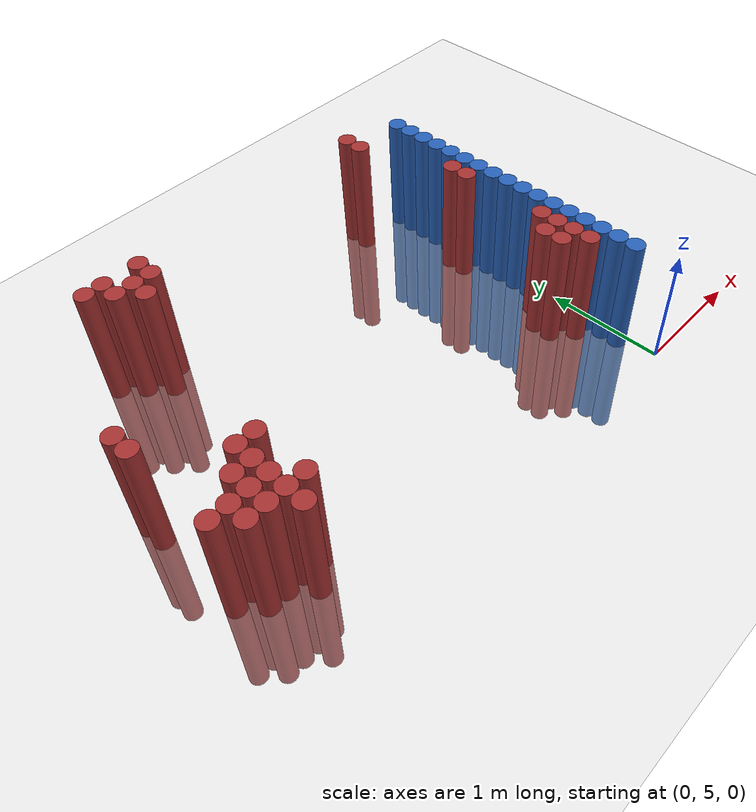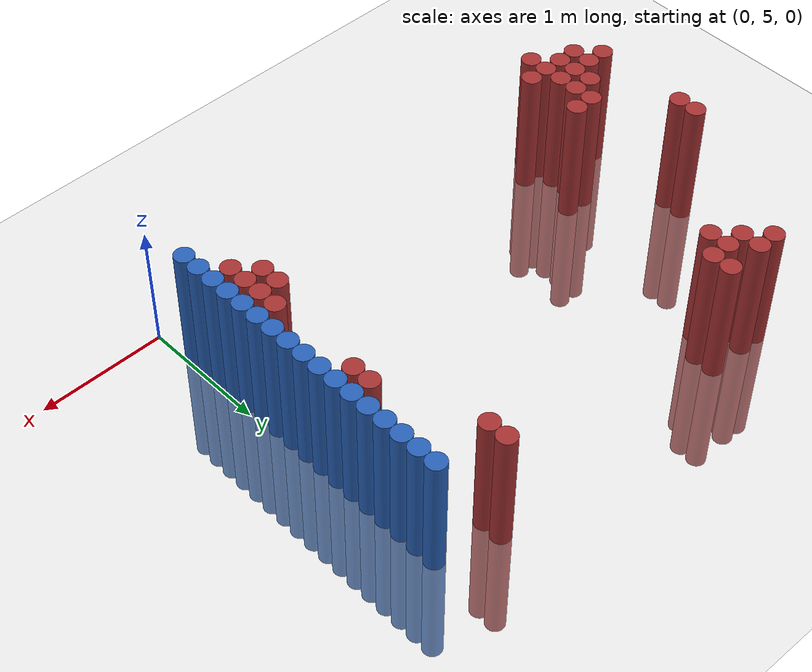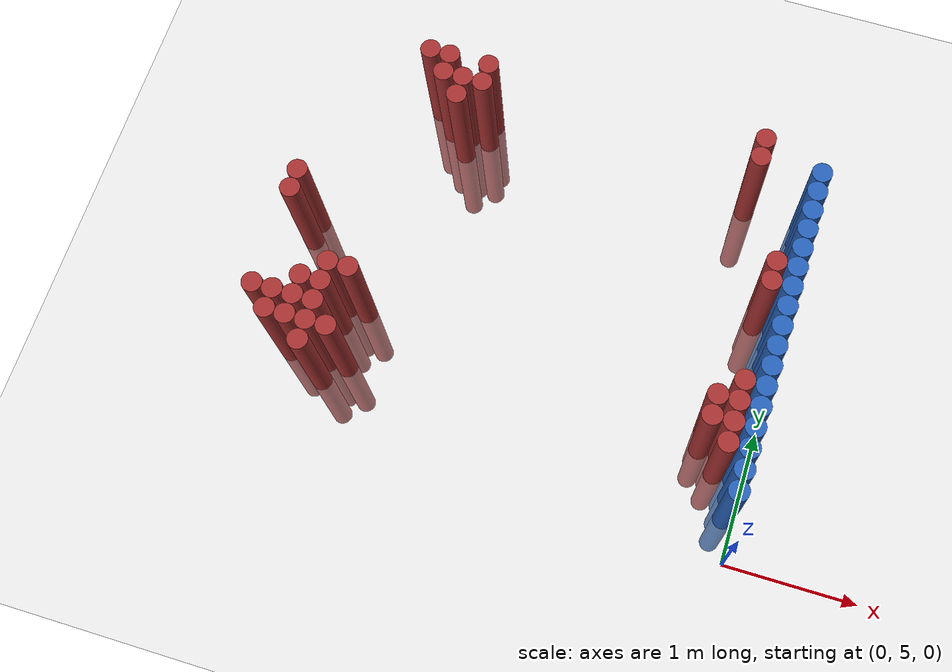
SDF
<sdf version="1.6">
 <world name="default">
  <model name="ground_plane">
   <static>1</static>
   <link name="link">
    <collision name="collision">
     <geometry><plane><normal>0 0 1</normal><size>100 100</size></plane></geometry>
     <surface><friction><ode><mu>100</mu><mu2>50</mu2></ode></friction></surface>
    </collision>
    <visual name="visual">
     <cast_shadows>0</cast_shadows>
     <geometry><plane><normal>0 0 1</normal><size>100 100</size></plane></geometry>
     <material>
      <script><uri>file://media/materials/scripts/gazebo.material</uri><name>Gazebo/Grey</name></script>
     </material>
    </visual>
   </link>
  </model>
  <model name="unit_cylinder_149">
   <static>1</static>
   <pose>-3.675000 5.775000 0.000000 0.000000 0.000000 0.000000</pose>
   <link name="link">
    <inertial>
     <mass>1</mass>
     <inertia><ixx>0.145833</ixx><ixy>0</ixy><ixz>0</ixz><iyy>0.145833</iyy><iyz>0</iyz><izz>0.125</izz></inertia>
    </inertial>
    <collision name="collision">
     <geometry><cylinder><radius>0.075000</radius><length>2</length></cylinder></geometry>
    </collision>
    <visual name="visual">
     <geometry><cylinder><radius>0.075000</radius><length>2</length></cylinder></geometry>
     <material>
      <ambient>0.648000 0.192000 0.192000 1</ambient>
      <diffuse>0.648000 0.192000 0.192000 1</diffuse>
     </material>
     <material>
      <script><name>Gazebo/Grey</name><uri>file://media/materials/scripts/gazebo.material</uri></script>
     </material>
    </visual>
   </link>
  </model>
  <model name="unit_cylinder_150">
   <static>1</static>
   <pose>-3.675000 6.525000 0.000000 0.000000 0.000000 0.000000</pose>
   <link name="link">
    <inertial>
     <mass>1</mass>
     <inertia><ixx>0.145833</ixx><ixy>0</ixy><ixz>0</ixz><iyy>0.145833</iyy><iyz>0</iyz><izz>0.125</izz></inertia>
    </inertial>
    <collision name="collision">
     <geometry><cylinder><radius>0.075000</radius><length>2</length></cylinder></geometry>
    </collision>
    <visual name="visual">
     <geometry><cylinder><radius>0.075000</radius><length>2</length></cylinder></geometry>
     <material>
      <ambient>0.648000 0.192000 0.192000 1</ambient>
      <diffuse>0.648000 0.192000 0.192000 1</diffuse>
     </material>
     <material>
      <script><name>Gazebo/Grey</name><uri>file://media/materials/scripts/gazebo.material</uri></script>
     </material>
    </visual>
   </link>
  </model>
  <model name="unit_cylinder_151">
   <static>1</static>
   <pose>-3.675000 6.675000 0.000000 0.000000 0.000000 0.000000</pose>
   <link name="link">
    <inertial>
     <mass>1</mass>
     <inertia><ixx>0.145833</ixx><ixy>0</ixy><ixz>0</ixz><iyy>0.145833</iyy><iyz>0</iyz><izz>0.125</izz></inertia>
    </inertial>
    <collision name="collision">
     <geometry><cylinder><radius>0.075000</radius><length>2</length></cylinder></geometry>
    </collision>
    <visual name="visual">
     <geometry><cylinder><radius>0.075000</radius><length>2</length></cylinder></geometry>
     <material>
      <ambient>0.648000 0.192000 0.192000 1</ambient>
      <diffuse>0.648000 0.192000 0.192000 1</diffuse>
     </material>
     <material>
      <script><name>Gazebo/Grey</name><uri>file://media/materials/scripts/gazebo.material</uri></script>
     </material>
    </visual>
   </link>
  </model>
  <model name="unit_cylinder_153">
   <static>1</static>
   <pose>-3.525000 5.625000 0.000000 0.000000 0.000000 0.000000</pose>
   <link name="link">
    <inertial>
     <mass>1</mass>
     <inertia><ixx>0.145833</ixx><ixy>0</ixy><ixz>0</ixz><iyy>0.145833</iyy><iyz>0</iyz><izz>0.125</izz></inertia>
    </inertial>
    <collision name="collision">
     <geometry><cylinder><radius>0.075000</radius><length>2</length></cylinder></geometry>
    </collision>
    <visual name="visual">
     <geometry><cylinder><radius>0.075000</radius><length>2</length></cylinder></geometry>
     <material>
      <ambient>0.648000 0.192000 0.192000 1</ambient>
      <diffuse>0.648000 0.192000 0.192000 1</diffuse>
     </material>
     <material>
      <script><name>Gazebo/Grey</name><uri>file://media/materials/scripts/gazebo.material</uri></script>
     </material>
    </visual>
   </link>
  </model>
  <model name="unit_cylinder_154">
   <static>1</static>
   <pose>-3.525000 5.775000 0.000000 0.000000 0.000000 0.000000</pose>
   <link name="link">
    <inertial>
     <mass>1</mass>
     <inertia><ixx>0.145833</ixx><ixy>0</ixy><ixz>0</ixz><iyy>0.145833</iyy><iyz>0</iyz><izz>0.125</izz></inertia>
    </inertial>
    <collision name="collision">
     <geometry><cylinder><radius>0.075000</radius><length>2</length></cylinder></geometry>
    </collision>
    <visual name="visual">
     <geometry><cylinder><radius>0.075000</radius><length>2</length></cylinder></geometry>
     <material>
      <ambient>0.648000 0.192000 0.192000 1</ambient>
      <diffuse>0.648000 0.192000 0.192000 1</diffuse>
     </material>
     <material>
      <script><name>Gazebo/Grey</name><uri>file://media/materials/scripts/gazebo.material</uri></script>
     </material>
    </visual>
   </link>
  </model>
  <model name="unit_cylinder_156">
   <static>1</static>
   <pose>-3.375000 5.625000 0.000000 0.000000 0.000000 0.000000</pose>
   <link name="link">
    <inertial>
     <mass>1</mass>
     <inertia><ixx>0.145833</ixx><ixy>0</ixy><ixz>0</ixz><iyy>0.145833</iyy><iyz>0</iyz><izz>0.125</izz></inertia>
    </inertial>
    <collision name="collision">
     <geometry><cylinder><radius>0.075000</radius><length>2</length></cylinder></geometry>
    </collision>
    <visual name="visual">
     <geometry><cylinder><radius>0.075000</radius><length>2</length></cylinder></geometry>
     <material>
      <ambient>0.648000 0.192000 0.192000 1</ambient>
      <diffuse>0.648000 0.192000 0.192000 1</diffuse>
     </material>
     <material>
      <script><name>Gazebo/Grey</name><uri>file://media/materials/scripts/gazebo.material</uri></script>
     </material>
    </visual>
   </link>
  </model>
  <model name="unit_cylinder_157">
   <static>1</static>
   <pose>-3.375000 5.775000 0.000000 0.000000 0.000000 0.000000</pose>
   <link name="link">
    <inertial>
     <mass>1</mass>
     <inertia><ixx>0.145833</ixx><ixy>0</ixy><ixz>0</ixz><iyy>0.145833</iyy><iyz>0</iyz><izz>0.125</izz></inertia>
    </inertial>
    <collision name="collision">
     <geometry><cylinder><radius>0.075000</radius><length>2</length></cylinder></geometry>
    </collision>
    <visual name="visual">
     <geometry><cylinder><radius>0.075000</radius><length>2</length></cylinder></geometry>
     <material>
      <ambient>0.648000 0.192000 0.192000 1</ambient>
      <diffuse>0.648000 0.192000 0.192000 1</diffuse>
     </material>
     <material>
      <script><name>Gazebo/Grey</name><uri>file://media/materials/scripts/gazebo.material</uri></script>
     </material>
    </visual>
   </link>
  </model>
  <model name="unit_cylinder_158">
   <static>1</static>
   <pose>-3.375000 5.925000 0.000000 0.000000 0.000000 0.000000</pose>
   <link name="link">
    <inertial>
     <mass>1</mass>
     <inertia><ixx>0.145833</ixx><ixy>0</ixy><ixz>0</ixz><iyy>0.145833</iyy><iyz>0</iyz><izz>0.125</izz></inertia>
    </inertial>
    <collision name="collision">
     <geometry><cylinder><radius>0.075000</radius><length>2</length></cylinder></geometry>
    </collision>
    <visual name="visual">
     <geometry><cylinder><radius>0.075000</radius><length>2</length></cylinder></geometry>
     <material>
      <ambient>0.648000 0.192000 0.192000 1</ambient>
      <diffuse>0.648000 0.192000 0.192000 1</diffuse>
     </material>
     <material>
      <script><name>Gazebo/Grey</name><uri>file://media/materials/scripts/gazebo.material</uri></script>
     </material>
    </visual>
   </link>
  </model>
  <model name="unit_cylinder_161">
   <static>1</static>
   <pose>-3.225000 5.475000 0.000000 0.000000 0.000000 0.000000</pose>
   <link name="link">
    <inertial>
     <mass>1</mass>
     <inertia><ixx>0.145833</ixx><ixy>0</ixy><ixz>0</ixz><iyy>0.145833</iyy><iyz>0</iyz><izz>0.125</izz></inertia>
    </inertial>
    <collision name="collision">
     <geometry><cylinder><radius>0.075000</radius><length>2</length></cylinder></geometry>
    </collision>
    <visual name="visual">
     <geometry><cylinder><radius>0.075000</radius><length>2</length></cylinder></geometry>
     <material>
      <ambient>0.648000 0.192000 0.192000 1</ambient>
      <diffuse>0.648000 0.192000 0.192000 1</diffuse>
     </material>
     <material>
      <script><name>Gazebo/Grey</name><uri>file://media/materials/scripts/gazebo.material</uri></script>
     </material>
    </visual>
   </link>
  </model>
  <model name="unit_cylinder_162">
   <static>1</static>
   <pose>-3.225000 5.625000 0.000000 0.000000 0.000000 0.000000</pose>
   <link name="link">
    <inertial>
     <mass>1</mass>
     <inertia><ixx>0.145833</ixx><ixy>0</ixy><ixz>0</ixz><iyy>0.145833</iyy><iyz>0</iyz><izz>0.125</izz></inertia>
    </inertial>
    <collision name="collision">
     <geometry><cylinder><radius>0.075000</radius><length>2</length></cylinder></geometry>
    </collision>
    <visual name="visual">
     <geometry><cylinder><radius>0.075000</radius><length>2</length></cylinder></geometry>
     <material>
      <ambient>0.648000 0.192000 0.192000 1</ambient>
      <diffuse>0.648000 0.192000 0.192000 1</diffuse>
     </material>
     <material>
      <script><name>Gazebo/Grey</name><uri>file://media/materials/scripts/gazebo.material</uri></script>
     </material>
    </visual>
   </link>
  </model>
  <model name="unit_cylinder_163">
   <static>1</static>
   <pose>-3.225000 5.775000 0.000000 0.000000 0.000000 0.000000</pose>
   <link name="link">
    <inertial>
     <mass>1</mass>
     <inertia><ixx>0.145833</ixx><ixy>0</ixy><ixz>0</ixz><iyy>0.145833</iyy><iyz>0</iyz><izz>0.125</izz></inertia>
    </inertial>
    <collision name="collision">
     <geometry><cylinder><radius>0.075000</radius><length>2</length></cylinder></geometry>
    </collision>
    <visual name="visual">
     <geometry><cylinder><radius>0.075000</radius><length>2</length></cylinder></geometry>
     <material>
      <ambient>0.648000 0.192000 0.192000 1</ambient>
      <diffuse>0.648000 0.192000 0.192000 1</diffuse>
     </material>
     <material>
      <script><name>Gazebo/Grey</name><uri>file://media/materials/scripts/gazebo.material</uri></script>
     </material>
    </visual>
   </link>
  </model>
  <model name="unit_cylinder_164">
   <static>1</static>
   <pose>-3.225000 5.925000 0.000000 0.000000 0.000000 0.000000</pose>
   <link name="link">
    <inertial>
     <mass>1</mass>
     <inertia><ixx>0.145833</ixx><ixy>0</ixy><ixz>0</ixz><iyy>0.145833</iyy><iyz>0</iyz><izz>0.125</izz></inertia>
    </inertial>
    <collision name="collision">
     <geometry><cylinder><radius>0.075000</radius><length>2</length></cylinder></geometry>
    </collision>
    <visual name="visual">
     <geometry><cylinder><radius>0.075000</radius><length>2</length></cylinder></geometry>
     <material>
      <ambient>0.648000 0.192000 0.192000 1</ambient>
      <diffuse>0.648000 0.192000 0.192000 1</diffuse>
     </material>
     <material>
      <script><name>Gazebo/Grey</name><uri>file://media/materials/scripts/gazebo.material</uri></script>
     </material>
    </visual>
   </link>
  </model>
  <model name="unit_cylinder_165">
   <static>1</static>
   <pose>-3.225000 6.075000 0.000000 0.000000 0.000000 0.000000</pose>
   <link name="link">
    <inertial>
     <mass>1</mass>
     <inertia><ixx>0.145833</ixx><ixy>0</ixy><ixz>0</ixz><iyy>0.145833</iyy><iyz>0</iyz><izz>0.125</izz></inertia>
    </inertial>
    <collision name="collision">
     <geometry><cylinder><radius>0.075000</radius><length>2</length></cylinder></geometry>
    </collision>
    <visual name="visual">
     <geometry><cylinder><radius>0.075000</radius><length>2</length></cylinder></geometry>
     <material>
      <ambient>0.648000 0.192000 0.192000 1</ambient>
      <diffuse>0.648000 0.192000 0.192000 1</diffuse>
     </material>
     <material>
      <script><name>Gazebo/Grey</name><uri>file://media/materials/scripts/gazebo.material</uri></script>
     </material>
    </visual>
   </link>
  </model>
  <model name="unit_cylinder_169">
   <static>1</static>
   <pose>-3.075000 5.625000 0.000000 0.000000 0.000000 0.000000</pose>
   <link name="link">
    <inertial>
     <mass>1</mass>
     <inertia><ixx>0.145833</ixx><ixy>0</ixy><ixz>0</ixz><iyy>0.145833</iyy><iyz>0</iyz><izz>0.125</izz></inertia>
    </inertial>
    <collision name="collision">
     <geometry><cylinder><radius>0.075000</radius><length>2</length></cylinder></geometry>
    </collision>
    <visual name="visual">
     <geometry><cylinder><radius>0.075000</radius><length>2</length></cylinder></geometry>
     <material>
      <ambient>0.648000 0.192000 0.192000 1</ambient>
      <diffuse>0.648000 0.192000 0.192000 1</diffuse>
     </material>
     <material>
      <script><name>Gazebo/Grey</name><uri>file://media/materials/scripts/gazebo.material</uri></script>
     </material>
    </visual>
   </link>
  </model>
  <model name="unit_cylinder_170">
   <static>1</static>
   <pose>-3.075000 6.075000 0.000000 0.000000 0.000000 0.000000</pose>
   <link name="link">
    <inertial>
     <mass>1</mass>
     <inertia><ixx>0.145833</ixx><ixy>0</ixy><ixz>0</ixz><iyy>0.145833</iyy><iyz>0</iyz><izz>0.125</izz></inertia>
    </inertial>
    <collision name="collision">
     <geometry><cylinder><radius>0.075000</radius><length>2</length></cylinder></geometry>
    </collision>
    <visual name="visual">
     <geometry><cylinder><radius>0.075000</radius><length>2</length></cylinder></geometry>
     <material>
      <ambient>0.648000 0.192000 0.192000 1</ambient>
      <diffuse>0.648000 0.192000 0.192000 1</diffuse>
     </material>
     <material>
      <script><name>Gazebo/Grey</name><uri>file://media/materials/scripts/gazebo.material</uri></script>
     </material>
    </visual>
   </link>
  </model>
  <model name="unit_cylinder_171">
   <static>1</static>
   <pose>-3.075000 7.875000 0.000000 0.000000 0.000000 0.000000</pose>
   <link name="link">
    <inertial>
     <mass>1</mass>
     <inertia><ixx>0.145833</ixx><ixy>0</ixy><ixz>0</ixz><iyy>0.145833</iyy><iyz>0</iyz><izz>0.125</izz></inertia>
    </inertial>
    <collision name="collision">
     <geometry><cylinder><radius>0.075000</radius><length>2</length></cylinder></geometry>
    </collision>
    <visual name="visual">
     <geometry><cylinder><radius>0.075000</radius><length>2</length></cylinder></geometry>
     <material>
      <ambient>0.648000 0.192000 0.192000 1</ambient>
      <diffuse>0.648000 0.192000 0.192000 1</diffuse>
     </material>
     <material>
      <script><name>Gazebo/Grey</name><uri>file://media/materials/scripts/gazebo.material</uri></script>
     </material>
    </visual>
   </link>
  </model>
  <model name="unit_cylinder_174">
   <static>1</static>
   <pose>-2.925000 7.725000 0.000000 0.000000 0.000000 0.000000</pose>
   <link name="link">
    <inertial>
     <mass>1</mass>
     <inertia><ixx>0.145833</ixx><ixy>0</ixy><ixz>0</ixz><iyy>0.145833</iyy><iyz>0</iyz><izz>0.125</izz></inertia>
    </inertial>
    <collision name="collision">
     <geometry><cylinder><radius>0.075000</radius><length>2</length></cylinder></geometry>
    </collision>
    <visual name="visual">
     <geometry><cylinder><radius>0.075000</radius><length>2</length></cylinder></geometry>
     <material>
      <ambient>0.648000 0.192000 0.192000 1</ambient>
      <diffuse>0.648000 0.192000 0.192000 1</diffuse>
     </material>
     <material>
      <script><name>Gazebo/Grey</name><uri>file://media/materials/scripts/gazebo.material</uri></script>
     </material>
    </visual>
   </link>
  </model>
  <model name="unit_cylinder_175">
   <static>1</static>
   <pose>-2.925000 7.875000 0.000000 0.000000 0.000000 0.000000</pose>
   <link name="link">
    <inertial>
     <mass>1</mass>
     <inertia><ixx>0.145833</ixx><ixy>0</ixy><ixz>0</ixz><iyy>0.145833</iyy><iyz>0</iyz><izz>0.125</izz></inertia>
    </inertial>
    <collision name="collision">
     <geometry><cylinder><radius>0.075000</radius><length>2</length></cylinder></geometry>
    </collision>
    <visual name="visual">
     <geometry><cylinder><radius>0.075000</radius><length>2</length></cylinder></geometry>
     <material>
      <ambient>0.648000 0.192000 0.192000 1</ambient>
      <diffuse>0.648000 0.192000 0.192000 1</diffuse>
     </material>
     <material>
      <script><name>Gazebo/Grey</name><uri>file://media/materials/scripts/gazebo.material</uri></script>
     </material>
    </visual>
   </link>
  </model>
  <model name="unit_cylinder_181">
   <static>1</static>
   <pose>-2.775000 7.575000 0.000000 0.000000 0.000000 0.000000</pose>
   <link name="link">
    <inertial>
     <mass>1</mass>
     <inertia><ixx>0.145833</ixx><ixy>0</ixy><ixz>0</ixz><iyy>0.145833</iyy><iyz>0</iyz><izz>0.125</izz></inertia>
    </inertial>
    <collision name="collision">
     <geometry><cylinder><radius>0.075000</radius><length>2</length></cylinder></geometry>
    </collision>
    <visual name="visual">
     <geometry><cylinder><radius>0.075000</radius><length>2</length></cylinder></geometry>
     <material>
      <ambient>0.648000 0.192000 0.192000 1</ambient>
      <diffuse>0.648000 0.192000 0.192000 1</diffuse>
     </material>
     <material>
      <script><name>Gazebo/Grey</name><uri>file://media/materials/scripts/gazebo.material</uri></script>
     </material>
    </visual>
   </link>
  </model>
  <model name="unit_cylinder_182">
   <static>1</static>
   <pose>-2.775000 7.725000 0.000000 0.000000 0.000000 0.000000</pose>
   <link name="link">
    <inertial>
     <mass>1</mass>
     <inertia><ixx>0.145833</ixx><ixy>0</ixy><ixz>0</ixz><iyy>0.145833</iyy><iyz>0</iyz><izz>0.125</izz></inertia>
    </inertial>
    <collision name="collision">
     <geometry><cylinder><radius>0.075000</radius><length>2</length></cylinder></geometry>
    </collision>
    <visual name="visual">
     <geometry><cylinder><radius>0.075000</radius><length>2</length></cylinder></geometry>
     <material>
      <ambient>0.648000 0.192000 0.192000 1</ambient>
      <diffuse>0.648000 0.192000 0.192000 1</diffuse>
     </material>
     <material>
      <script><name>Gazebo/Grey</name><uri>file://media/materials/scripts/gazebo.material</uri></script>
     </material>
    </visual>
   </link>
  </model>
  <model name="unit_cylinder_185">
   <static>1</static>
   <pose>-2.625000 7.725000 0.000000 0.000000 0.000000 0.000000</pose>
   <link name="link">
    <inertial>
     <mass>1</mass>
     <inertia><ixx>0.145833</ixx><ixy>0</ixy><ixz>0</ixz><iyy>0.145833</iyy><iyz>0</iyz><izz>0.125</izz></inertia>
    </inertial>
    <collision name="collision">
     <geometry><cylinder><radius>0.075000</radius><length>2</length></cylinder></geometry>
    </collision>
    <visual name="visual">
     <geometry><cylinder><radius>0.075000</radius><length>2</length></cylinder></geometry>
     <material>
      <ambient>0.648000 0.192000 0.192000 1</ambient>
      <diffuse>0.648000 0.192000 0.192000 1</diffuse>
     </material>
     <material>
      <script><name>Gazebo/Grey</name><uri>file://media/materials/scripts/gazebo.material</uri></script>
     </material>
    </visual>
   </link>
  </model>
  <model name="unit_cylinder_186">
   <static>1</static>
   <pose>-2.625000 7.875000 0.000000 0.000000 0.000000 0.000000</pose>
   <link name="link">
    <inertial>
     <mass>1</mass>
     <inertia><ixx>0.145833</ixx><ixy>0</ixy><ixz>0</ixz><iyy>0.145833</iyy><iyz>0</iyz><izz>0.125</izz></inertia>
    </inertial>
    <collision name="collision">
     <geometry><cylinder><radius>0.075000</radius><length>2</length></cylinder></geometry>
    </collision>
    <visual name="visual">
     <geometry><cylinder><radius>0.075000</radius><length>2</length></cylinder></geometry>
     <material>
      <ambient>0.648000 0.192000 0.192000 1</ambient>
      <diffuse>0.648000 0.192000 0.192000 1</diffuse>
     </material>
     <material>
      <script><name>Gazebo/Grey</name><uri>file://media/materials/scripts/gazebo.material</uri></script>
     </material>
    </visual>
   </link>
  </model>
  <model name="unit_cylinder_197">
   <static>1</static>
   <pose>-0.525000 7.725000 0.000000 0.000000 0.000000 0.000000</pose>
   <link name="link">
    <inertial>
     <mass>1</mass>
     <inertia><ixx>0.145833</ixx><ixy>0</ixy><ixz>0</ixz><iyy>0.145833</iyy><iyz>0</iyz><izz>0.125</izz></inertia>
    </inertial>
    <collision name="collision">
     <geometry><cylinder><radius>0.075000</radius><length>2</length></cylinder></geometry>
    </collision>
    <visual name="visual">
     <geometry><cylinder><radius>0.075000</radius><length>2</length></cylinder></geometry>
     <material>
      <ambient>0.648000 0.192000 0.192000 1</ambient>
      <diffuse>0.648000 0.192000 0.192000 1</diffuse>
     </material>
     <material>
      <script><name>Gazebo/Grey</name><uri>file://media/materials/scripts/gazebo.material</uri></script>
     </material>
    </visual>
   </link>
  </model>
  <model name="unit_cylinder_198">
   <static>1</static>
   <pose>-0.525000 7.875000 0.000000 0.000000 0.000000 0.000000</pose>
   <link name="link">
    <inertial>
     <mass>1</mass>
     <inertia><ixx>0.145833</ixx><ixy>0</ixy><ixz>0</ixz><iyy>0.145833</iyy><iyz>0</iyz><izz>0.125</izz></inertia>
    </inertial>
    <collision name="collision">
     <geometry><cylinder><radius>0.075000</radius><length>2</length></cylinder></geometry>
    </collision>
    <visual name="visual">
     <geometry><cylinder><radius>0.075000</radius><length>2</length></cylinder></geometry>
     <material>
      <ambient>0.648000 0.192000 0.192000 1</ambient>
      <diffuse>0.648000 0.192000 0.192000 1</diffuse>
     </material>
     <material>
      <script><name>Gazebo/Grey</name><uri>file://media/materials/scripts/gazebo.material</uri></script>
     </material>
    </visual>
   </link>
  </model>
  <model name="unit_cylinder_200">
   <static>1</static>
   <pose>-0.375000 5.775000 0.000000 0.000000 0.000000 0.000000</pose>
   <link name="link">
    <inertial>
     <mass>1</mass>
     <inertia><ixx>0.145833</ixx><ixy>0</ixy><ixz>0</ixz><iyy>0.145833</iyy><iyz>0</iyz><izz>0.125</izz></inertia>
    </inertial>
    <collision name="collision">
     <geometry><cylinder><radius>0.075000</radius><length>2</length></cylinder></geometry>
    </collision>
    <visual name="visual">
     <geometry><cylinder><radius>0.075000</radius><length>2</length></cylinder></geometry>
     <material>
      <ambient>0.648000 0.192000 0.192000 1</ambient>
      <diffuse>0.648000 0.192000 0.192000 1</diffuse>
     </material>
     <material>
      <script><name>Gazebo/Grey</name><uri>file://media/materials/scripts/gazebo.material</uri></script>
     </material>
    </visual>
   </link>
  </model>
  <model name="unit_cylinder_201">
   <static>1</static>
   <pose>-0.375000 5.925000 0.000000 0.000000 0.000000 0.000000</pose>
   <link name="link">
    <inertial>
     <mass>1</mass>
     <inertia><ixx>0.145833</ixx><ixy>0</ixy><ixz>0</ixz><iyy>0.145833</iyy><iyz>0</iyz><izz>0.125</izz></inertia>
    </inertial>
    <collision name="collision">
     <geometry><cylinder><radius>0.075000</radius><length>2</length></cylinder></geometry>
    </collision>
    <visual name="visual">
     <geometry><cylinder><radius>0.075000</radius><length>2</length></cylinder></geometry>
     <material>
      <ambient>0.648000 0.192000 0.192000 1</ambient>
      <diffuse>0.648000 0.192000 0.192000 1</diffuse>
     </material>
     <material>
      <script><name>Gazebo/Grey</name><uri>file://media/materials/scripts/gazebo.material</uri></script>
     </material>
    </visual>
   </link>
  </model>
  <model name="unit_cylinder_206">
   <static>1</static>
   <pose>-0.225000 5.625000 0.000000 0.000000 0.000000 0.000000</pose>
   <link name="link">
    <inertial>
     <mass>1</mass>
     <inertia><ixx>0.145833</ixx><ixy>0</ixy><ixz>0</ixz><iyy>0.145833</iyy><iyz>0</iyz><izz>0.125</izz></inertia>
    </inertial>
    <collision name="collision">
     <geometry><cylinder><radius>0.075000</radius><length>2</length></cylinder></geometry>
    </collision>
    <visual name="visual">
     <geometry><cylinder><radius>0.075000</radius><length>2</length></cylinder></geometry>
     <material>
      <ambient>0.648000 0.192000 0.192000 1</ambient>
      <diffuse>0.648000 0.192000 0.192000 1</diffuse>
     </material>
     <material>
      <script><name>Gazebo/Grey</name><uri>file://media/materials/scripts/gazebo.material</uri></script>
     </material>
    </visual>
   </link>
  </model>
  <model name="unit_cylinder_207">
   <static>1</static>
   <pose>-0.225000 5.775000 0.000000 0.000000 0.000000 0.000000</pose>
   <link name="link">
    <inertial>
     <mass>1</mass>
     <inertia><ixx>0.145833</ixx><ixy>0</ixy><ixz>0</ixz><iyy>0.145833</iyy><iyz>0</iyz><izz>0.125</izz></inertia>
    </inertial>
    <collision name="collision">
     <geometry><cylinder><radius>0.075000</radius><length>2</length></cylinder></geometry>
    </collision>
    <visual name="visual">
     <geometry><cylinder><radius>0.075000</radius><length>2</length></cylinder></geometry>
     <material>
      <ambient>0.648000 0.192000 0.192000 1</ambient>
      <diffuse>0.648000 0.192000 0.192000 1</diffuse>
     </material>
     <material>
      <script><name>Gazebo/Grey</name><uri>file://media/materials/scripts/gazebo.material</uri></script>
     </material>
    </visual>
   </link>
  </model>
  <model name="unit_cylinder_208">
   <static>1</static>
   <pose>-0.225000 5.925000 0.000000 0.000000 0.000000 0.000000</pose>
   <link name="link">
    <inertial>
     <mass>1</mass>
     <inertia><ixx>0.145833</ixx><ixy>0</ixy><ixz>0</ixz><iyy>0.145833</iyy><iyz>0</iyz><izz>0.125</izz></inertia>
    </inertial>
    <collision name="collision">
     <geometry><cylinder><radius>0.075000</radius><length>2</length></cylinder></geometry>
    </collision>
    <visual name="visual">
     <geometry><cylinder><radius>0.075000</radius><length>2</length></cylinder></geometry>
     <material>
      <ambient>0.648000 0.192000 0.192000 1</ambient>
      <diffuse>0.648000 0.192000 0.192000 1</diffuse>
     </material>
     <material>
      <script><name>Gazebo/Grey</name><uri>file://media/materials/scripts/gazebo.material</uri></script>
     </material>
    </visual>
   </link>
  </model>
  <model name="unit_cylinder_209">
   <static>1</static>
   <pose>-0.225000 6.075000 0.000000 0.000000 0.000000 0.000000</pose>
   <link name="link">
    <inertial>
     <mass>1</mass>
     <inertia><ixx>0.145833</ixx><ixy>0</ixy><ixz>0</ixz><iyy>0.145833</iyy><iyz>0</iyz><izz>0.125</izz></inertia>
    </inertial>
    <collision name="collision">
     <geometry><cylinder><radius>0.075000</radius><length>2</length></cylinder></geometry>
    </collision>
    <visual name="visual">
     <geometry><cylinder><radius>0.075000</radius><length>2</length></cylinder></geometry>
     <material>
      <ambient>0.648000 0.192000 0.192000 1</ambient>
      <diffuse>0.648000 0.192000 0.192000 1</diffuse>
     </material>
     <material>
      <script><name>Gazebo/Grey</name><uri>file://media/materials/scripts/gazebo.material</uri></script>
     </material>
    </visual>
   </link>
  </model>
  <model name="unit_cylinder_210">
   <static>1</static>
   <pose>-0.225000 6.825000 0.000000 0.000000 0.000000 0.000000</pose>
   <link name="link">
    <inertial>
     <mass>1</mass>
     <inertia><ixx>0.145833</ixx><ixy>0</ixy><ixz>0</ixz><iyy>0.145833</iyy><iyz>0</iyz><izz>0.125</izz></inertia>
    </inertial>
    <collision name="collision">
     <geometry><cylinder><radius>0.075000</radius><length>2</length></cylinder></geometry>
    </collision>
    <visual name="visual">
     <geometry><cylinder><radius>0.075000</radius><length>2</length></cylinder></geometry>
     <material>
      <ambient>0.648000 0.192000 0.192000 1</ambient>
      <diffuse>0.648000 0.192000 0.192000 1</diffuse>
     </material>
     <material>
      <script><name>Gazebo/Grey</name><uri>file://media/materials/scripts/gazebo.material</uri></script>
     </material>
    </visual>
   </link>
  </model>
  <model name="unit_cylinder_211">
   <static>1</static>
   <pose>-0.225000 6.975000 0.000000 0.000000 0.000000 0.000000</pose>
   <link name="link">
    <inertial>
     <mass>1</mass>
     <inertia><ixx>0.145833</ixx><ixy>0</ixy><ixz>0</ixz><iyy>0.145833</iyy><iyz>0</iyz><izz>0.125</izz></inertia>
    </inertial>
    <collision name="collision">
     <geometry><cylinder><radius>0.075000</radius><length>2</length></cylinder></geometry>
    </collision>
    <visual name="visual">
     <geometry><cylinder><radius>0.075000</radius><length>2</length></cylinder></geometry>
     <material>
      <ambient>0.648000 0.192000 0.192000 1</ambient>
      <diffuse>0.648000 0.192000 0.192000 1</diffuse>
     </material>
     <material>
      <script><name>Gazebo/Grey</name><uri>file://media/materials/scripts/gazebo.material</uri></script>
     </material>
    </visual>
   </link>
  </model>
  <model name="unit_cylinder_217">
   <static>1</static>
   <pose>-0.075000 5.325000 0.000000 0.000000 0.000000 0.000000</pose>
   <link name="link">
    <inertial>
     <mass>1</mass>
     <inertia><ixx>0.145833</ixx><ixy>0</ixy><ixz>0</ixz><iyy>0.145833</iyy><iyz>0</iyz><izz>0.125</izz></inertia>
    </inertial>
    <collision name="collision">
     <geometry><cylinder><radius>0.075000</radius><length>2</length></cylinder></geometry>
    </collision>
    <visual name="visual">
     <geometry><cylinder><radius>0.075000</radius><length>2</length></cylinder></geometry>
     <material>
      <ambient>0.152000 0.379000 0.720000 1</ambient>
      <diffuse>0.152000 0.379000 0.720000 1</diffuse>
     </material>
     <material>
      <script><name>Gazebo/Grey</name><uri>file://media/materials/scripts/gazebo.material</uri></script>
     </material>
    </visual>
   </link>
  </model>
  <model name="unit_cylinder_218">
   <static>1</static>
   <pose>-0.075000 5.475000 0.000000 0.000000 0.000000 0.000000</pose>
   <link name="link">
    <inertial>
     <mass>1</mass>
     <inertia><ixx>0.145833</ixx><ixy>0</ixy><ixz>0</ixz><iyy>0.145833</iyy><iyz>0</iyz><izz>0.125</izz></inertia>
    </inertial>
    <collision name="collision">
     <geometry><cylinder><radius>0.075000</radius><length>2</length></cylinder></geometry>
    </collision>
    <visual name="visual">
     <geometry><cylinder><radius>0.075000</radius><length>2</length></cylinder></geometry>
     <material>
      <ambient>0.152000 0.379000 0.720000 1</ambient>
      <diffuse>0.152000 0.379000 0.720000 1</diffuse>
     </material>
     <material>
      <script><name>Gazebo/Grey</name><uri>file://media/materials/scripts/gazebo.material</uri></script>
     </material>
    </visual>
   </link>
  </model>
  <model name="unit_cylinder_219">
   <static>1</static>
   <pose>-0.075000 5.625000 0.000000 0.000000 0.000000 0.000000</pose>
   <link name="link">
    <inertial>
     <mass>1</mass>
     <inertia><ixx>0.145833</ixx><ixy>0</ixy><ixz>0</ixz><iyy>0.145833</iyy><iyz>0</iyz><izz>0.125</izz></inertia>
    </inertial>
    <collision name="collision">
     <geometry><cylinder><radius>0.075000</radius><length>2</length></cylinder></geometry>
    </collision>
    <visual name="visual">
     <geometry><cylinder><radius>0.075000</radius><length>2</length></cylinder></geometry>
     <material>
      <ambient>0.152000 0.379000 0.720000 1</ambient>
      <diffuse>0.152000 0.379000 0.720000 1</diffuse>
     </material>
     <material>
      <script><name>Gazebo/Grey</name><uri>file://media/materials/scripts/gazebo.material</uri></script>
     </material>
    </visual>
   </link>
  </model>
  <model name="unit_cylinder_220">
   <static>1</static>
   <pose>-0.075000 5.775000 0.000000 0.000000 0.000000 0.000000</pose>
   <link name="link">
    <inertial>
     <mass>1</mass>
     <inertia><ixx>0.145833</ixx><ixy>0</ixy><ixz>0</ixz><iyy>0.145833</iyy><iyz>0</iyz><izz>0.125</izz></inertia>
    </inertial>
    <collision name="collision">
     <geometry><cylinder><radius>0.075000</radius><length>2</length></cylinder></geometry>
    </collision>
    <visual name="visual">
     <geometry><cylinder><radius>0.075000</radius><length>2</length></cylinder></geometry>
     <material>
      <ambient>0.152000 0.379000 0.720000 1</ambient>
      <diffuse>0.152000 0.379000 0.720000 1</diffuse>
     </material>
     <material>
      <script><name>Gazebo/Grey</name><uri>file://media/materials/scripts/gazebo.material</uri></script>
     </material>
    </visual>
   </link>
  </model>
  <model name="unit_cylinder_221">
   <static>1</static>
   <pose>-0.075000 5.925000 0.000000 0.000000 0.000000 0.000000</pose>
   <link name="link">
    <inertial>
     <mass>1</mass>
     <inertia><ixx>0.145833</ixx><ixy>0</ixy><ixz>0</ixz><iyy>0.145833</iyy><iyz>0</iyz><izz>0.125</izz></inertia>
    </inertial>
    <collision name="collision">
     <geometry><cylinder><radius>0.075000</radius><length>2</length></cylinder></geometry>
    </collision>
    <visual name="visual">
     <geometry><cylinder><radius>0.075000</radius><length>2</length></cylinder></geometry>
     <material>
      <ambient>0.152000 0.379000 0.720000 1</ambient>
      <diffuse>0.152000 0.379000 0.720000 1</diffuse>
     </material>
     <material>
      <script><name>Gazebo/Grey</name><uri>file://media/materials/scripts/gazebo.material</uri></script>
     </material>
    </visual>
   </link>
  </model>
  <model name="unit_cylinder_222">
   <static>1</static>
   <pose>-0.075000 6.075000 0.000000 0.000000 0.000000 0.000000</pose>
   <link name="link">
    <inertial>
     <mass>1</mass>
     <inertia><ixx>0.145833</ixx><ixy>0</ixy><ixz>0</ixz><iyy>0.145833</iyy><iyz>0</iyz><izz>0.125</izz></inertia>
    </inertial>
    <collision name="collision">
     <geometry><cylinder><radius>0.075000</radius><length>2</length></cylinder></geometry>
    </collision>
    <visual name="visual">
     <geometry><cylinder><radius>0.075000</radius><length>2</length></cylinder></geometry>
     <material>
      <ambient>0.152000 0.379000 0.720000 1</ambient>
      <diffuse>0.152000 0.379000 0.720000 1</diffuse>
     </material>
     <material>
      <script><name>Gazebo/Grey</name><uri>file://media/materials/scripts/gazebo.material</uri></script>
     </material>
    </visual>
   </link>
  </model>
  <model name="unit_cylinder_223">
   <static>1</static>
   <pose>-0.075000 6.225000 0.000000 0.000000 0.000000 0.000000</pose>
   <link name="link">
    <inertial>
     <mass>1</mass>
     <inertia><ixx>0.145833</ixx><ixy>0</ixy><ixz>0</ixz><iyy>0.145833</iyy><iyz>0</iyz><izz>0.125</izz></inertia>
    </inertial>
    <collision name="collision">
     <geometry><cylinder><radius>0.075000</radius><length>2</length></cylinder></geometry>
    </collision>
    <visual name="visual">
     <geometry><cylinder><radius>0.075000</radius><length>2</length></cylinder></geometry>
     <material>
      <ambient>0.152000 0.379000 0.720000 1</ambient>
      <diffuse>0.152000 0.379000 0.720000 1</diffuse>
     </material>
     <material>
      <script><name>Gazebo/Grey</name><uri>file://media/materials/scripts/gazebo.material</uri></script>
     </material>
    </visual>
   </link>
  </model>
  <model name="unit_cylinder_224">
   <static>1</static>
   <pose>-0.075000 6.375000 0.000000 0.000000 0.000000 0.000000</pose>
   <link name="link">
    <inertial>
     <mass>1</mass>
     <inertia><ixx>0.145833</ixx><ixy>0</ixy><ixz>0</ixz><iyy>0.145833</iyy><iyz>0</iyz><izz>0.125</izz></inertia>
    </inertial>
    <collision name="collision">
     <geometry><cylinder><radius>0.075000</radius><length>2</length></cylinder></geometry>
    </collision>
    <visual name="visual">
     <geometry><cylinder><radius>0.075000</radius><length>2</length></cylinder></geometry>
     <material>
      <ambient>0.152000 0.379000 0.720000 1</ambient>
      <diffuse>0.152000 0.379000 0.720000 1</diffuse>
     </material>
     <material>
      <script><name>Gazebo/Grey</name><uri>file://media/materials/scripts/gazebo.material</uri></script>
     </material>
    </visual>
   </link>
  </model>
  <model name="unit_cylinder_225">
   <static>1</static>
   <pose>-0.075000 6.525000 0.000000 0.000000 0.000000 0.000000</pose>
   <link name="link">
    <inertial>
     <mass>1</mass>
     <inertia><ixx>0.145833</ixx><ixy>0</ixy><ixz>0</ixz><iyy>0.145833</iyy><iyz>0</iyz><izz>0.125</izz></inertia>
    </inertial>
    <collision name="collision">
     <geometry><cylinder><radius>0.075000</radius><length>2</length></cylinder></geometry>
    </collision>
    <visual name="visual">
     <geometry><cylinder><radius>0.075000</radius><length>2</length></cylinder></geometry>
     <material>
      <ambient>0.152000 0.379000 0.720000 1</ambient>
      <diffuse>0.152000 0.379000 0.720000 1</diffuse>
     </material>
     <material>
      <script><name>Gazebo/Grey</name><uri>file://media/materials/scripts/gazebo.material</uri></script>
     </material>
    </visual>
   </link>
  </model>
  <model name="unit_cylinder_226">
   <static>1</static>
   <pose>-0.075000 6.675000 0.000000 0.000000 0.000000 0.000000</pose>
   <link name="link">
    <inertial>
     <mass>1</mass>
     <inertia><ixx>0.145833</ixx><ixy>0</ixy><ixz>0</ixz><iyy>0.145833</iyy><iyz>0</iyz><izz>0.125</izz></inertia>
    </inertial>
    <collision name="collision">
     <geometry><cylinder><radius>0.075000</radius><length>2</length></cylinder></geometry>
    </collision>
    <visual name="visual">
     <geometry><cylinder><radius>0.075000</radius><length>2</length></cylinder></geometry>
     <material>
      <ambient>0.152000 0.379000 0.720000 1</ambient>
      <diffuse>0.152000 0.379000 0.720000 1</diffuse>
     </material>
     <material>
      <script><name>Gazebo/Grey</name><uri>file://media/materials/scripts/gazebo.material</uri></script>
     </material>
    </visual>
   </link>
  </model>
  <model name="unit_cylinder_227">
   <static>1</static>
   <pose>-0.075000 6.825000 0.000000 0.000000 0.000000 0.000000</pose>
   <link name="link">
    <inertial>
     <mass>1</mass>
     <inertia><ixx>0.145833</ixx><ixy>0</ixy><ixz>0</ixz><iyy>0.145833</iyy><iyz>0</iyz><izz>0.125</izz></inertia>
    </inertial>
    <collision name="collision">
     <geometry><cylinder><radius>0.075000</radius><length>2</length></cylinder></geometry>
    </collision>
    <visual name="visual">
     <geometry><cylinder><radius>0.075000</radius><length>2</length></cylinder></geometry>
     <material>
      <ambient>0.152000 0.379000 0.720000 1</ambient>
      <diffuse>0.152000 0.379000 0.720000 1</diffuse>
     </material>
     <material>
      <script><name>Gazebo/Grey</name><uri>file://media/materials/scripts/gazebo.material</uri></script>
     </material>
    </visual>
   </link>
  </model>
  <model name="unit_cylinder_228">
   <static>1</static>
   <pose>-0.075000 6.975000 0.000000 0.000000 0.000000 0.000000</pose>
   <link name="link">
    <inertial>
     <mass>1</mass>
     <inertia><ixx>0.145833</ixx><ixy>0</ixy><ixz>0</ixz><iyy>0.145833</iyy><iyz>0</iyz><izz>0.125</izz></inertia>
    </inertial>
    <collision name="collision">
     <geometry><cylinder><radius>0.075000</radius><length>2</length></cylinder></geometry>
    </collision>
    <visual name="visual">
     <geometry><cylinder><radius>0.075000</radius><length>2</length></cylinder></geometry>
     <material>
      <ambient>0.152000 0.379000 0.720000 1</ambient>
      <diffuse>0.152000 0.379000 0.720000 1</diffuse>
     </material>
     <material>
      <script><name>Gazebo/Grey</name><uri>file://media/materials/scripts/gazebo.material</uri></script>
     </material>
    </visual>
   </link>
  </model>
  <model name="unit_cylinder_229">
   <static>1</static>
   <pose>-0.075000 7.125000 0.000000 0.000000 0.000000 0.000000</pose>
   <link name="link">
    <inertial>
     <mass>1</mass>
     <inertia><ixx>0.145833</ixx><ixy>0</ixy><ixz>0</ixz><iyy>0.145833</iyy><iyz>0</iyz><izz>0.125</izz></inertia>
    </inertial>
    <collision name="collision">
     <geometry><cylinder><radius>0.075000</radius><length>2</length></cylinder></geometry>
    </collision>
    <visual name="visual">
     <geometry><cylinder><radius>0.075000</radius><length>2</length></cylinder></geometry>
     <material>
      <ambient>0.152000 0.379000 0.720000 1</ambient>
      <diffuse>0.152000 0.379000 0.720000 1</diffuse>
     </material>
     <material>
      <script><name>Gazebo/Grey</name><uri>file://media/materials/scripts/gazebo.material</uri></script>
     </material>
    </visual>
   </link>
  </model>
  <model name="unit_cylinder_230">
   <static>1</static>
   <pose>-0.075000 7.275000 0.000000 0.000000 0.000000 0.000000</pose>
   <link name="link">
    <inertial>
     <mass>1</mass>
     <inertia><ixx>0.145833</ixx><ixy>0</ixy><ixz>0</ixz><iyy>0.145833</iyy><iyz>0</iyz><izz>0.125</izz></inertia>
    </inertial>
    <collision name="collision">
     <geometry><cylinder><radius>0.075000</radius><length>2</length></cylinder></geometry>
    </collision>
    <visual name="visual">
     <geometry><cylinder><radius>0.075000</radius><length>2</length></cylinder></geometry>
     <material>
      <ambient>0.152000 0.379000 0.720000 1</ambient>
      <diffuse>0.152000 0.379000 0.720000 1</diffuse>
     </material>
     <material>
      <script><name>Gazebo/Grey</name><uri>file://media/materials/scripts/gazebo.material</uri></script>
     </material>
    </visual>
   </link>
  </model>
  <model name="unit_cylinder_231">
   <static>1</static>
   <pose>-0.075000 7.425000 0.000000 0.000000 0.000000 0.000000</pose>
   <link name="link">
    <inertial>
     <mass>1</mass>
     <inertia><ixx>0.145833</ixx><ixy>0</ixy><ixz>0</ixz><iyy>0.145833</iyy><iyz>0</iyz><izz>0.125</izz></inertia>
    </inertial>
    <collision name="collision">
     <geometry><cylinder><radius>0.075000</radius><length>2</length></cylinder></geometry>
    </collision>
    <visual name="visual">
     <geometry><cylinder><radius>0.075000</radius><length>2</length></cylinder></geometry>
     <material>
      <ambient>0.152000 0.379000 0.720000 1</ambient>
      <diffuse>0.152000 0.379000 0.720000 1</diffuse>
     </material>
     <material>
      <script><name>Gazebo/Grey</name><uri>file://media/materials/scripts/gazebo.material</uri></script>
     </material>
    </visual>
   </link>
  </model>
  <model name="unit_cylinder_232">
   <static>1</static>
   <pose>-0.075000 7.575000 0.000000 0.000000 0.000000 0.000000</pose>
   <link name="link">
    <inertial>
     <mass>1</mass>
     <inertia><ixx>0.145833</ixx><ixy>0</ixy><ixz>0</ixz><iyy>0.145833</iyy><iyz>0</iyz><izz>0.125</izz></inertia>
    </inertial>
    <collision name="collision">
     <geometry><cylinder><radius>0.075000</radius><length>2</length></cylinder></geometry>
    </collision>
    <visual name="visual">
     <geometry><cylinder><radius>0.075000</radius><length>2</length></cylinder></geometry>
     <material>
      <ambient>0.152000 0.379000 0.720000 1</ambient>
      <diffuse>0.152000 0.379000 0.720000 1</diffuse>
     </material>
     <material>
      <script><name>Gazebo/Grey</name><uri>file://media/materials/scripts/gazebo.material</uri></script>
     </material>
    </visual>
   </link>
  </model>
  <model name="unit_cylinder_233">
   <static>1</static>
   <pose>-0.075000 7.725000 0.000000 0.000000 0.000000 0.000000</pose>
   <link name="link">
    <inertial>
     <mass>1</mass>
     <inertia><ixx>0.145833</ixx><ixy>0</ixy><ixz>0</ixz><iyy>0.145833</iyy><iyz>0</iyz><izz>0.125</izz></inertia>
    </inertial>
    <collision name="collision">
     <geometry><cylinder><radius>0.075000</radius><length>2</length></cylinder></geometry>
    </collision>
    <visual name="visual">
     <geometry><cylinder><radius>0.075000</radius><length>2</length></cylinder></geometry>
     <material>
      <ambient>0.152000 0.379000 0.720000 1</ambient>
      <diffuse>0.152000 0.379000 0.720000 1</diffuse>
     </material>
     <material>
      <script><name>Gazebo/Grey</name><uri>file://media/materials/scripts/gazebo.material</uri></script>
     </material>
    </visual>
   </link>
  </model>
 </world>
</sdf>
